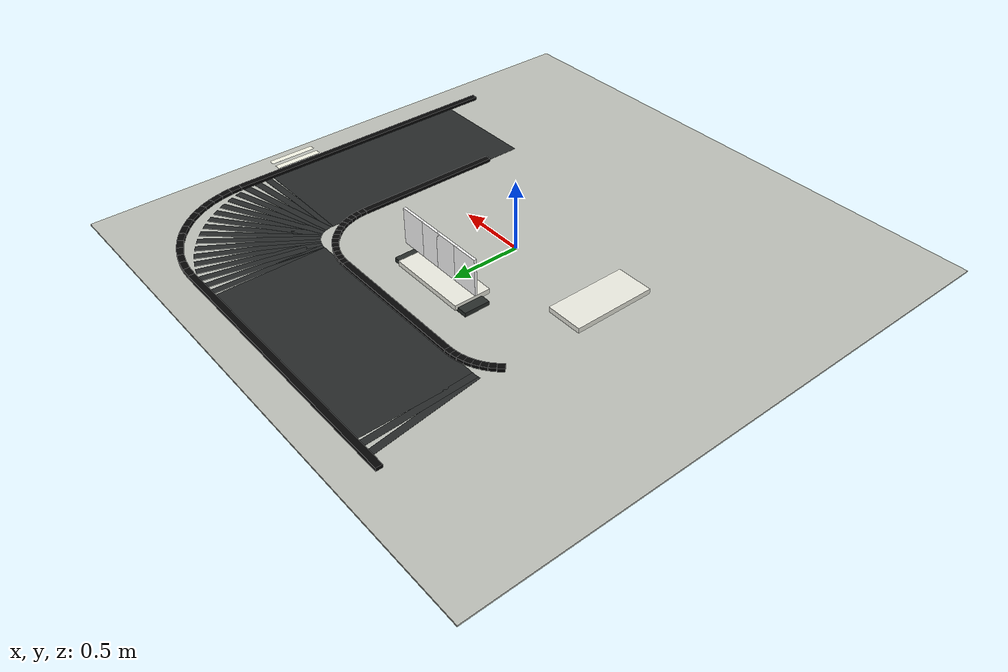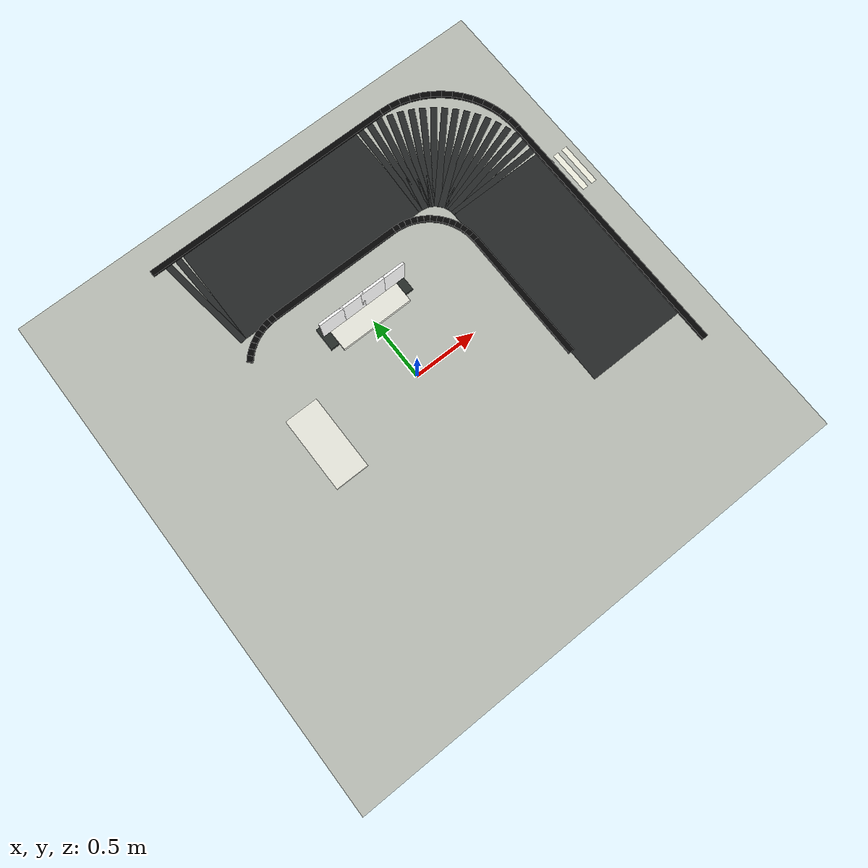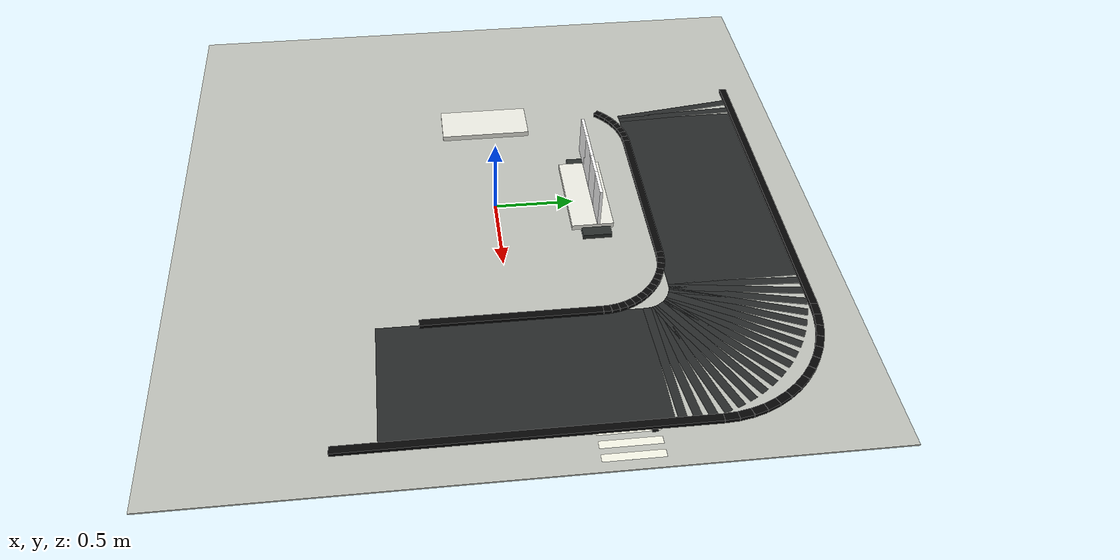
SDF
<sdf version="1.9">
 <world name="safe_city">
  <model name="ground_plane_4m">
   <static>true</static>
   <pose>0 0 0.005 0 0 0</pose>
   <link name="link">
    <collision name="collision"><geometry><box><size>4 4 0.01</size></box></geometry></collision>
    <visual name="visual">
     <geometry><box><size>4 4 0.01</size></box></geometry>
     <material><ambient>0.74 0.75 0.72 1</ambient><diffuse>0.74 0.75 0.72 1</diffuse></material>
    </visual>
   </link>
  </model>
  <model name="road_surface_37">
   <static>true</static>
   <pose>1.3500 -0.0000 0.0060 0 0 1.57080</pose>
   <link name="link">
    <visual name="visual">
     <geometry><box><size>1.5600 0.8000 0.0120</size></box></geometry>
     <material><ambient>0.15 0.16 0.16 1</ambient><diffuse>0.15 0.16 0.16 1</diffuse></material>
    </visual>
   </link>
  </model>
  <model name="road_surface_38">
   <static>true</static>
   <pose>1.3489 0.8048 0.0060 0 0 1.61443</pose>
   <link name="link">
    <visual name="visual">
     <geometry><box><size>0.0497 0.8000 0.0120</size></box></geometry>
     <material><ambient>0.15 0.16 0.16 1</ambient><diffuse>0.15 0.16 0.16 1</diffuse></material>
    </visual>
   </link>
  </model>
  <model name="road_surface_39">
   <static>true</static>
   <pose>1.3446 0.8543 0.0060 0 0 1.70170</pose>
   <link name="link">
    <visual name="visual">
     <geometry><box><size>0.0497 0.8000 0.0120</size></box></geometry>
     <material><ambient>0.15 0.16 0.16 1</ambient><diffuse>0.15 0.16 0.16 1</diffuse></material>
    </visual>
   </link>
  </model>
  <model name="road_surface_40">
   <static>true</static>
   <pose>1.3360 0.9033 0.0060 0 0 1.78896</pose>
   <link name="link">
    <visual name="visual">
     <geometry><box><size>0.0497 0.8000 0.0120</size></box></geometry>
     <material><ambient>0.15 0.16 0.16 1</ambient><diffuse>0.15 0.16 0.16 1</diffuse></material>
    </visual>
   </link>
  </model>
  <model name="road_surface_41">
   <static>true</static>
   <pose>1.3231 0.9512 0.0060 0 0 1.87623</pose>
   <link name="link">
    <visual name="visual">
     <geometry><box><size>0.0497 0.8000 0.0120</size></box></geometry>
     <material><ambient>0.15 0.16 0.16 1</ambient><diffuse>0.15 0.16 0.16 1</diffuse></material>
    </visual>
   </link>
  </model>
  <model name="road_surface_42">
   <static>true</static>
   <pose>1.3061 0.9979 0.0060 0 0 1.96350</pose>
   <link name="link">
    <visual name="visual">
     <geometry><box><size>0.0497 0.8000 0.0120</size></box></geometry>
     <material><ambient>0.15 0.16 0.16 1</ambient><diffuse>0.15 0.16 0.16 1</diffuse></material>
    </visual>
   </link>
  </model>
  <model name="road_surface_43">
   <static>true</static>
   <pose>1.2851 1.0429 0.0060 0 0 2.05076</pose>
   <link name="link">
    <visual name="visual">
     <geometry><box><size>0.0497 0.8000 0.0120</size></box></geometry>
     <material><ambient>0.15 0.16 0.16 1</ambient><diffuse>0.15 0.16 0.16 1</diffuse></material>
    </visual>
   </link>
  </model>
  <model name="road_surface_44">
   <static>true</static>
   <pose>1.2603 1.0860 0.0060 0 0 2.13803</pose>
   <link name="link">
    <visual name="visual">
     <geometry><box><size>0.0497 0.8000 0.0120</size></box></geometry>
     <material><ambient>0.15 0.16 0.16 1</ambient><diffuse>0.15 0.16 0.16 1</diffuse></material>
    </visual>
   </link>
  </model>
  <model name="road_surface_45">
   <static>true</static>
   <pose>1.2318 1.1267 0.0060 0 0 2.22529</pose>
   <link name="link">
    <visual name="visual">
     <geometry><box><size>0.0497 0.8000 0.0120</size></box></geometry>
     <material><ambient>0.15 0.16 0.16 1</ambient><diffuse>0.15 0.16 0.16 1</diffuse></material>
    </visual>
   </link>
  </model>
  <model name="road_surface_46">
   <static>true</static>
   <pose>1.1998 1.1647 0.0060 0 0 2.31256</pose>
   <link name="link">
    <visual name="visual">
     <geometry><box><size>0.0497 0.8000 0.0120</size></box></geometry>
     <material><ambient>0.15 0.16 0.16 1</ambient><diffuse>0.15 0.16 0.16 1</diffuse></material>
    </visual>
   </link>
  </model>
  <model name="road_surface_47">
   <static>true</static>
   <pose>1.1647 1.1998 0.0060 0 0 2.39983</pose>
   <link name="link">
    <visual name="visual">
     <geometry><box><size>0.0497 0.8000 0.0120</size></box></geometry>
     <material><ambient>0.15 0.16 0.16 1</ambient><diffuse>0.15 0.16 0.16 1</diffuse></material>
    </visual>
   </link>
  </model>
  <model name="road_surface_48">
   <static>true</static>
   <pose>1.1267 1.2318 0.0060 0 0 2.48709</pose>
   <link name="link">
    <visual name="visual">
     <geometry><box><size>0.0497 0.8000 0.0120</size></box></geometry>
     <material><ambient>0.15 0.16 0.16 1</ambient><diffuse>0.15 0.16 0.16 1</diffuse></material>
    </visual>
   </link>
  </model>
  <model name="road_surface_49">
   <static>true</static>
   <pose>1.0860 1.2603 0.0060 0 0 2.57436</pose>
   <link name="link">
    <visual name="visual">
     <geometry><box><size>0.0497 0.8000 0.0120</size></box></geometry>
     <material><ambient>0.15 0.16 0.16 1</ambient><diffuse>0.15 0.16 0.16 1</diffuse></material>
    </visual>
   </link>
  </model>
  <model name="road_surface_50">
   <static>true</static>
   <pose>1.0429 1.2851 0.0060 0 0 2.66163</pose>
   <link name="link">
    <visual name="visual">
     <geometry><box><size>0.0497 0.8000 0.0120</size></box></geometry>
     <material><ambient>0.15 0.16 0.16 1</ambient><diffuse>0.15 0.16 0.16 1</diffuse></material>
    </visual>
   </link>
  </model>
  <model name="road_surface_51">
   <static>true</static>
   <pose>0.9979 1.3061 0.0060 0 0 2.74889</pose>
   <link name="link">
    <visual name="visual">
     <geometry><box><size>0.0497 0.8000 0.0120</size></box></geometry>
     <material><ambient>0.15 0.16 0.16 1</ambient><diffuse>0.15 0.16 0.16 1</diffuse></material>
    </visual>
   </link>
  </model>
  <model name="road_surface_52">
   <static>true</static>
   <pose>0.9512 1.3231 0.0060 0 0 2.83616</pose>
   <link name="link">
    <visual name="visual">
     <geometry><box><size>0.0497 0.8000 0.0120</size></box></geometry>
     <material><ambient>0.15 0.16 0.16 1</ambient><diffuse>0.15 0.16 0.16 1</diffuse></material>
    </visual>
   </link>
  </model>
  <model name="road_surface_53">
   <static>true</static>
   <pose>0.9033 1.3360 0.0060 0 0 2.92343</pose>
   <link name="link">
    <visual name="visual">
     <geometry><box><size>0.0497 0.8000 0.0120</size></box></geometry>
     <material><ambient>0.15 0.16 0.16 1</ambient><diffuse>0.15 0.16 0.16 1</diffuse></material>
    </visual>
   </link>
  </model>
  <model name="road_surface_54">
   <static>true</static>
   <pose>0.8543 1.3446 0.0060 0 0 3.01069</pose>
   <link name="link">
    <visual name="visual">
     <geometry><box><size>0.0497 0.8000 0.0120</size></box></geometry>
     <material><ambient>0.15 0.16 0.16 1</ambient><diffuse>0.15 0.16 0.16 1</diffuse></material>
    </visual>
   </link>
  </model>
  <model name="road_surface_55">
   <static>true</static>
   <pose>0.8048 1.3489 0.0060 0 0 3.09796</pose>
   <link name="link">
    <visual name="visual">
     <geometry><box><size>0.0497 0.8000 0.0120</size></box></geometry>
     <material><ambient>0.15 0.16 0.16 1</ambient><diffuse>0.15 0.16 0.16 1</diffuse></material>
    </visual>
   </link>
  </model>
  <model name="road_surface_56">
   <static>true</static>
   <pose>0.0000 1.3500 0.0060 0 0 3.14159</pose>
   <link name="link">
    <visual name="visual">
     <geometry><box><size>1.5600 0.8000 0.0120</size></box></geometry>
     <material><ambient>0.15 0.16 0.16 1</ambient><diffuse>0.15 0.16 0.16 1</diffuse></material>
    </visual>
   </link>
  </model>
  <model name="road_surface_57">
   <static>true</static>
   <pose>-0.8048 1.3489 0.0060 0 0 -3.09796</pose>
   <link name="link">
    <visual name="visual">
     <geometry><box><size>0.0497 0.8000 0.0120</size></box></geometry>
     <material><ambient>0.15 0.16 0.16 1</ambient><diffuse>0.15 0.16 0.16 1</diffuse></material>
    </visual>
   </link>
  </model>
  <model name="road_surface_58">
   <static>true</static>
   <pose>-0.8543 1.3446 0.0060 0 0 -3.01069</pose>
   <link name="link">
    <visual name="visual">
     <geometry><box><size>0.0497 0.8000 0.0120</size></box></geometry>
     <material><ambient>0.15 0.16 0.16 1</ambient><diffuse>0.15 0.16 0.16 1</diffuse></material>
    </visual>
   </link>
  </model>
  <model name="outer_black_line_29">
   <static>true</static>
   <pose>1.7500 -0.0000 0.0175 0 0 1.57080</pose>
   <link name="link">
    <collision name="collision"><geometry><box><size>2.0600 0.0450 0.0350</size></box></geometry></collision>
    <visual name="visual">
     <geometry><box><size>2.0600 0.0450 0.0350</size></box></geometry>
     <material><ambient>0.02 0.02 0.02 1</ambient><diffuse>0.02 0.02 0.02 1</diffuse></material>
    </visual>
   </link>
  </model>
  <model name="outer_black_line_30">
   <static>true</static>
   <pose>1.7477 1.0703 0.0175 0 0 1.62690</pose>
   <link name="link">
    <collision name="collision"><geometry><box><size>0.0807 0.0450 0.0350</size></box></geometry></collision>
    <visual name="visual">
     <geometry><box><size>0.0807 0.0450 0.0350</size></box></geometry>
     <material><ambient>0.02 0.02 0.02 1</ambient><diffuse>0.02 0.02 0.02 1</diffuse></material>
    </visual>
   </link>
  </model>
  <model name="outer_black_line_31">
   <static>true</static>
   <pose>1.7387 1.1504 0.0175 0 0 1.73910</pose>
   <link name="link">
    <collision name="collision"><geometry><box><size>0.0807 0.0450 0.0350</size></box></geometry></collision>
    <visual name="visual">
     <geometry><box><size>0.0807 0.0450 0.0350</size></box></geometry>
     <material><ambient>0.02 0.02 0.02 1</ambient><diffuse>0.02 0.02 0.02 1</diffuse></material>
    </visual>
   </link>
  </model>
  <model name="outer_black_line_32">
   <static>true</static>
   <pose>1.7208 1.2290 0.0175 0 0 1.85130</pose>
   <link name="link">
    <collision name="collision"><geometry><box><size>0.0807 0.0450 0.0350</size></box></geometry></collision>
    <visual name="visual">
     <geometry><box><size>0.0807 0.0450 0.0350</size></box></geometry>
     <material><ambient>0.02 0.02 0.02 1</ambient><diffuse>0.02 0.02 0.02 1</diffuse></material>
    </visual>
   </link>
  </model>
  <model name="outer_black_line_33">
   <static>true</static>
   <pose>1.6941 1.3051 0.0175 0 0 1.96350</pose>
   <link name="link">
    <collision name="collision"><geometry><box><size>0.0807 0.0450 0.0350</size></box></geometry></collision>
    <visual name="visual">
     <geometry><box><size>0.0807 0.0450 0.0350</size></box></geometry>
     <material><ambient>0.02 0.02 0.02 1</ambient><diffuse>0.02 0.02 0.02 1</diffuse></material>
    </visual>
   </link>
  </model>
  <model name="outer_black_line_34">
   <static>true</static>
   <pose>1.6592 1.3777 0.0175 0 0 2.07570</pose>
   <link name="link">
    <collision name="collision"><geometry><box><size>0.0807 0.0450 0.0350</size></box></geometry></collision>
    <visual name="visual">
     <geometry><box><size>0.0807 0.0450 0.0350</size></box></geometry>
     <material><ambient>0.02 0.02 0.02 1</ambient><diffuse>0.02 0.02 0.02 1</diffuse></material>
    </visual>
   </link>
  </model>
  <model name="outer_black_line_35">
   <static>true</static>
   <pose>1.6163 1.4460 0.0175 0 0 2.18789</pose>
   <link name="link">
    <collision name="collision"><geometry><box><size>0.0807 0.0450 0.0350</size></box></geometry></collision>
    <visual name="visual">
     <geometry><box><size>0.0807 0.0450 0.0350</size></box></geometry>
     <material><ambient>0.02 0.02 0.02 1</ambient><diffuse>0.02 0.02 0.02 1</diffuse></material>
    </visual>
   </link>
  </model>
  <model name="outer_black_line_36">
   <static>true</static>
   <pose>1.5660 1.5090 0.0175 0 0 2.30009</pose>
   <link name="link">
    <collision name="collision"><geometry><box><size>0.0807 0.0450 0.0350</size></box></geometry></collision>
    <visual name="visual">
     <geometry><box><size>0.0807 0.0450 0.0350</size></box></geometry>
     <material><ambient>0.02 0.02 0.02 1</ambient><diffuse>0.02 0.02 0.02 1</diffuse></material>
    </visual>
   </link>
  </model>
  <model name="outer_black_line_37">
   <static>true</static>
   <pose>1.5090 1.5660 0.0175 0 0 2.41229</pose>
   <link name="link">
    <collision name="collision"><geometry><box><size>0.0807 0.0450 0.0350</size></box></geometry></collision>
    <visual name="visual">
     <geometry><box><size>0.0807 0.0450 0.0350</size></box></geometry>
     <material><ambient>0.02 0.02 0.02 1</ambient><diffuse>0.02 0.02 0.02 1</diffuse></material>
    </visual>
   </link>
  </model>
  <model name="outer_black_line_38">
   <static>true</static>
   <pose>1.4460 1.6163 0.0175 0 0 2.52449</pose>
   <link name="link">
    <collision name="collision"><geometry><box><size>0.0807 0.0450 0.0350</size></box></geometry></collision>
    <visual name="visual">
     <geometry><box><size>0.0807 0.0450 0.0350</size></box></geometry>
     <material><ambient>0.02 0.02 0.02 1</ambient><diffuse>0.02 0.02 0.02 1</diffuse></material>
    </visual>
   </link>
  </model>
  <model name="outer_black_line_39">
   <static>true</static>
   <pose>1.3777 1.6592 0.0175 0 0 2.63669</pose>
   <link name="link">
    <collision name="collision"><geometry><box><size>0.0807 0.0450 0.0350</size></box></geometry></collision>
    <visual name="visual">
     <geometry><box><size>0.0807 0.0450 0.0350</size></box></geometry>
     <material><ambient>0.02 0.02 0.02 1</ambient><diffuse>0.02 0.02 0.02 1</diffuse></material>
    </visual>
   </link>
  </model>
  <model name="outer_black_line_40">
   <static>true</static>
   <pose>1.3051 1.6941 0.0175 0 0 2.74889</pose>
   <link name="link">
    <collision name="collision"><geometry><box><size>0.0807 0.0450 0.0350</size></box></geometry></collision>
    <visual name="visual">
     <geometry><box><size>0.0807 0.0450 0.0350</size></box></geometry>
     <material><ambient>0.02 0.02 0.02 1</ambient><diffuse>0.02 0.02 0.02 1</diffuse></material>
    </visual>
   </link>
  </model>
  <model name="outer_black_line_41">
   <static>true</static>
   <pose>1.2290 1.7208 0.0175 0 0 2.86109</pose>
   <link name="link">
    <collision name="collision"><geometry><box><size>0.0807 0.0450 0.0350</size></box></geometry></collision>
    <visual name="visual">
     <geometry><box><size>0.0807 0.0450 0.0350</size></box></geometry>
     <material><ambient>0.02 0.02 0.02 1</ambient><diffuse>0.02 0.02 0.02 1</diffuse></material>
    </visual>
   </link>
  </model>
  <model name="outer_black_line_42">
   <static>true</static>
   <pose>1.1504 1.7387 0.0175 0 0 2.97329</pose>
   <link name="link">
    <collision name="collision"><geometry><box><size>0.0807 0.0450 0.0350</size></box></geometry></collision>
    <visual name="visual">
     <geometry><box><size>0.0807 0.0450 0.0350</size></box></geometry>
     <material><ambient>0.02 0.02 0.02 1</ambient><diffuse>0.02 0.02 0.02 1</diffuse></material>
    </visual>
   </link>
  </model>
  <model name="outer_black_line_43">
   <static>true</static>
   <pose>1.0703 1.7477 0.0175 0 0 3.08549</pose>
   <link name="link">
    <collision name="collision"><geometry><box><size>0.0807 0.0450 0.0350</size></box></geometry></collision>
    <visual name="visual">
     <geometry><box><size>0.0807 0.0450 0.0350</size></box></geometry>
     <material><ambient>0.02 0.02 0.02 1</ambient><diffuse>0.02 0.02 0.02 1</diffuse></material>
    </visual>
   </link>
  </model>
  <model name="outer_black_line_44">
   <static>true</static>
   <pose>0.0000 1.7500 0.0175 0 0 3.14159</pose>
   <link name="link">
    <collision name="collision"><geometry><box><size>2.0600 0.0450 0.0350</size></box></geometry></collision>
    <visual name="visual">
     <geometry><box><size>2.0600 0.0450 0.0350</size></box></geometry>
     <material><ambient>0.02 0.02 0.02 1</ambient><diffuse>0.02 0.02 0.02 1</diffuse></material>
    </visual>
   </link>
  </model>
  <model name="inner_black_line_29">
   <static>true</static>
   <pose>0.9500 -0.0000 0.0175 0 0 1.57080</pose>
   <link name="link">
    <collision name="collision"><geometry><box><size>1.0600 0.0450 0.0350</size></box></geometry></collision>
    <visual name="visual">
     <geometry><box><size>1.0600 0.0450 0.0350</size></box></geometry>
     <material><ambient>0.02 0.02 0.02 1</ambient><diffuse>0.02 0.02 0.02 1</diffuse></material>
    </visual>
   </link>
  </model>
  <model name="inner_black_line_30">
   <static>true</static>
   <pose>0.9487 0.5535 0.0175 0 0 1.62690</pose>
   <link name="link">
    <collision name="collision"><geometry><box><size>0.0471 0.0450 0.0350</size></box></geometry></collision>
    <visual name="visual">
     <geometry><box><size>0.0471 0.0450 0.0350</size></box></geometry>
     <material><ambient>0.02 0.02 0.02 1</ambient><diffuse>0.02 0.02 0.02 1</diffuse></material>
    </visual>
   </link>
  </model>
  <model name="inner_black_line_31">
   <static>true</static>
   <pose>0.9434 0.6002 0.0175 0 0 1.73910</pose>
   <link name="link">
    <collision name="collision"><geometry><box><size>0.0471 0.0450 0.0350</size></box></geometry></collision>
    <visual name="visual">
     <geometry><box><size>0.0471 0.0450 0.0350</size></box></geometry>
     <material><ambient>0.02 0.02 0.02 1</ambient><diffuse>0.02 0.02 0.02 1</diffuse></material>
    </visual>
   </link>
  </model>
  <model name="inner_black_line_32">
   <static>true</static>
   <pose>0.9330 0.6461 0.0175 0 0 1.85130</pose>
   <link name="link">
    <collision name="collision"><geometry><box><size>0.0471 0.0450 0.0350</size></box></geometry></collision>
    <visual name="visual">
     <geometry><box><size>0.0471 0.0450 0.0350</size></box></geometry>
     <material><ambient>0.02 0.02 0.02 1</ambient><diffuse>0.02 0.02 0.02 1</diffuse></material>
    </visual>
   </link>
  </model>
  <model name="inner_black_line_33">
   <static>true</static>
   <pose>0.9174 0.6905 0.0175 0 0 1.96350</pose>
   <link name="link">
    <collision name="collision"><geometry><box><size>0.0471 0.0450 0.0350</size></box></geometry></collision>
    <visual name="visual">
     <geometry><box><size>0.0471 0.0450 0.0350</size></box></geometry>
     <material><ambient>0.02 0.02 0.02 1</ambient><diffuse>0.02 0.02 0.02 1</diffuse></material>
    </visual>
   </link>
  </model>
  <model name="inner_black_line_34">
   <static>true</static>
   <pose>0.8970 0.7328 0.0175 0 0 2.07570</pose>
   <link name="link">
    <collision name="collision"><geometry><box><size>0.0471 0.0450 0.0350</size></box></geometry></collision>
    <visual name="visual">
     <geometry><box><size>0.0471 0.0450 0.0350</size></box></geometry>
     <material><ambient>0.02 0.02 0.02 1</ambient><diffuse>0.02 0.02 0.02 1</diffuse></material>
    </visual>
   </link>
  </model>
  <model name="inner_black_line_35">
   <static>true</static>
   <pose>0.8720 0.7727 0.0175 0 0 2.18789</pose>
   <link name="link">
    <collision name="collision"><geometry><box><size>0.0471 0.0450 0.0350</size></box></geometry></collision>
    <visual name="visual">
     <geometry><box><size>0.0471 0.0450 0.0350</size></box></geometry>
     <material><ambient>0.02 0.02 0.02 1</ambient><diffuse>0.02 0.02 0.02 1</diffuse></material>
    </visual>
   </link>
  </model>
  <model name="inner_black_line_36">
   <static>true</static>
   <pose>0.8427 0.8094 0.0175 0 0 2.30009</pose>
   <link name="link">
    <collision name="collision"><geometry><box><size>0.0471 0.0450 0.0350</size></box></geometry></collision>
    <visual name="visual">
     <geometry><box><size>0.0471 0.0450 0.0350</size></box></geometry>
     <material><ambient>0.02 0.02 0.02 1</ambient><diffuse>0.02 0.02 0.02 1</diffuse></material>
    </visual>
   </link>
  </model>
  <model name="inner_black_line_37">
   <static>true</static>
   <pose>0.8094 0.8427 0.0175 0 0 2.41229</pose>
   <link name="link">
    <collision name="collision"><geometry><box><size>0.0471 0.0450 0.0350</size></box></geometry></collision>
    <visual name="visual">
     <geometry><box><size>0.0471 0.0450 0.0350</size></box></geometry>
     <material><ambient>0.02 0.02 0.02 1</ambient><diffuse>0.02 0.02 0.02 1</diffuse></material>
    </visual>
   </link>
  </model>
  <model name="inner_black_line_38">
   <static>true</static>
   <pose>0.7727 0.8720 0.0175 0 0 2.52449</pose>
   <link name="link">
    <collision name="collision"><geometry><box><size>0.0471 0.0450 0.0350</size></box></geometry></collision>
    <visual name="visual">
     <geometry><box><size>0.0471 0.0450 0.0350</size></box></geometry>
     <material><ambient>0.02 0.02 0.02 1</ambient><diffuse>0.02 0.02 0.02 1</diffuse></material>
    </visual>
   </link>
  </model>
  <model name="inner_black_line_39">
   <static>true</static>
   <pose>0.7328 0.8970 0.0175 0 0 2.63669</pose>
   <link name="link">
    <collision name="collision"><geometry><box><size>0.0471 0.0450 0.0350</size></box></geometry></collision>
    <visual name="visual">
     <geometry><box><size>0.0471 0.0450 0.0350</size></box></geometry>
     <material><ambient>0.02 0.02 0.02 1</ambient><diffuse>0.02 0.02 0.02 1</diffuse></material>
    </visual>
   </link>
  </model>
  <model name="inner_black_line_40">
   <static>true</static>
   <pose>0.6905 0.9174 0.0175 0 0 2.74889</pose>
   <link name="link">
    <collision name="collision"><geometry><box><size>0.0471 0.0450 0.0350</size></box></geometry></collision>
    <visual name="visual">
     <geometry><box><size>0.0471 0.0450 0.0350</size></box></geometry>
     <material><ambient>0.02 0.02 0.02 1</ambient><diffuse>0.02 0.02 0.02 1</diffuse></material>
    </visual>
   </link>
  </model>
  <model name="inner_black_line_41">
   <static>true</static>
   <pose>0.6461 0.9330 0.0175 0 0 2.86109</pose>
   <link name="link">
    <collision name="collision"><geometry><box><size>0.0471 0.0450 0.0350</size></box></geometry></collision>
    <visual name="visual">
     <geometry><box><size>0.0471 0.0450 0.0350</size></box></geometry>
     <material><ambient>0.02 0.02 0.02 1</ambient><diffuse>0.02 0.02 0.02 1</diffuse></material>
    </visual>
   </link>
  </model>
  <model name="inner_black_line_42">
   <static>true</static>
   <pose>0.6002 0.9434 0.0175 0 0 2.97329</pose>
   <link name="link">
    <collision name="collision"><geometry><box><size>0.0471 0.0450 0.0350</size></box></geometry></collision>
    <visual name="visual">
     <geometry><box><size>0.0471 0.0450 0.0350</size></box></geometry>
     <material><ambient>0.02 0.02 0.02 1</ambient><diffuse>0.02 0.02 0.02 1</diffuse></material>
    </visual>
   </link>
  </model>
  <model name="inner_black_line_43">
   <static>true</static>
   <pose>0.5535 0.9487 0.0175 0 0 3.08549</pose>
   <link name="link">
    <collision name="collision"><geometry><box><size>0.0471 0.0450 0.0350</size></box></geometry></collision>
    <visual name="visual">
     <geometry><box><size>0.0471 0.0450 0.0350</size></box></geometry>
     <material><ambient>0.02 0.02 0.02 1</ambient><diffuse>0.02 0.02 0.02 1</diffuse></material>
    </visual>
   </link>
  </model>
  <model name="inner_black_line_44">
   <static>true</static>
   <pose>0.0000 0.9500 0.0175 0 0 3.14159</pose>
   <link name="link">
    <collision name="collision"><geometry><box><size>1.0600 0.0450 0.0350</size></box></geometry></collision>
    <visual name="visual">
     <geometry><box><size>1.0600 0.0450 0.0350</size></box></geometry>
     <material><ambient>0.02 0.02 0.02 1</ambient><diffuse>0.02 0.02 0.02 1</diffuse></material>
    </visual>
   </link>
  </model>
  <model name="inner_black_line_45">
   <static>true</static>
   <pose>-0.5535 0.9487 0.0175 0 0 -3.08549</pose>
   <link name="link">
    <collision name="collision"><geometry><box><size>0.0471 0.0450 0.0350</size></box></geometry></collision>
    <visual name="visual">
     <geometry><box><size>0.0471 0.0450 0.0350</size></box></geometry>
     <material><ambient>0.02 0.02 0.02 1</ambient><diffuse>0.02 0.02 0.02 1</diffuse></material>
    </visual>
   </link>
  </model>
  <model name="inner_black_line_46">
   <static>true</static>
   <pose>-0.6002 0.9434 0.0175 0 0 -2.97329</pose>
   <link name="link">
    <collision name="collision"><geometry><box><size>0.0471 0.0450 0.0350</size></box></geometry></collision>
    <visual name="visual">
     <geometry><box><size>0.0471 0.0450 0.0350</size></box></geometry>
     <material><ambient>0.02 0.02 0.02 1</ambient><diffuse>0.02 0.02 0.02 1</diffuse></material>
    </visual>
   </link>
  </model>
  <model name="inner_black_line_47">
   <static>true</static>
   <pose>-0.6461 0.9330 0.0175 0 0 -2.86109</pose>
   <link name="link">
    <collision name="collision"><geometry><box><size>0.0471 0.0450 0.0350</size></box></geometry></collision>
    <visual name="visual">
     <geometry><box><size>0.0471 0.0450 0.0350</size></box></geometry>
     <material><ambient>0.02 0.02 0.02 1</ambient><diffuse>0.02 0.02 0.02 1</diffuse></material>
    </visual>
   </link>
  </model>
  <model name="inner_black_line_48">
   <static>true</static>
   <pose>-0.6905 0.9174 0.0175 0 0 -2.74889</pose>
   <link name="link">
    <collision name="collision"><geometry><box><size>0.0471 0.0450 0.0350</size></box></geometry></collision>
    <visual name="visual">
     <geometry><box><size>0.0471 0.0450 0.0350</size></box></geometry>
     <material><ambient>0.02 0.02 0.02 1</ambient><diffuse>0.02 0.02 0.02 1</diffuse></material>
    </visual>
   </link>
  </model>
  <model name="inner_black_line_49">
   <static>true</static>
   <pose>-0.7328 0.8970 0.0175 0 0 -2.63669</pose>
   <link name="link">
    <collision name="collision"><geometry><box><size>0.0471 0.0450 0.0350</size></box></geometry></collision>
    <visual name="visual">
     <geometry><box><size>0.0471 0.0450 0.0350</size></box></geometry>
     <material><ambient>0.02 0.02 0.02 1</ambient><diffuse>0.02 0.02 0.02 1</diffuse></material>
    </visual>
   </link>
  </model>
  <model name="inner_black_line_50">
   <static>true</static>
   <pose>-0.7727 0.8720 0.0175 0 0 -2.52449</pose>
   <link name="link">
    <collision name="collision"><geometry><box><size>0.0471 0.0450 0.0350</size></box></geometry></collision>
    <visual name="visual">
     <geometry><box><size>0.0471 0.0450 0.0350</size></box></geometry>
     <material><ambient>0.02 0.02 0.02 1</ambient><diffuse>0.02 0.02 0.02 1</diffuse></material>
    </visual>
   </link>
  </model>
  <model name="inner_black_line_51">
   <static>true</static>
   <pose>-0.8094 0.8427 0.0175 0 0 -2.41229</pose>
   <link name="link">
    <collision name="collision"><geometry><box><size>0.0471 0.0450 0.0350</size></box></geometry></collision>
    <visual name="visual">
     <geometry><box><size>0.0471 0.0450 0.0350</size></box></geometry>
     <material><ambient>0.02 0.02 0.02 1</ambient><diffuse>0.02 0.02 0.02 1</diffuse></material>
    </visual>
   </link>
  </model>
  <model name="inner_black_line_52">
   <static>true</static>
   <pose>-0.8427 0.8094 0.0175 0 0 -2.30009</pose>
   <link name="link">
    <collision name="collision"><geometry><box><size>0.0471 0.0450 0.0350</size></box></geometry></collision>
    <visual name="visual">
     <geometry><box><size>0.0471 0.0450 0.0350</size></box></geometry>
     <material><ambient>0.02 0.02 0.02 1</ambient><diffuse>0.02 0.02 0.02 1</diffuse></material>
    </visual>
   </link>
  </model>
  <model name="right_sidewalk_upper_line">
   <static>true</static>
   <pose>1.55 0.66 0.0116 0 0 0</pose>
   <link name="link">
    <visual name="visual">
     <geometry><plane><size>0.48 0.035</size></plane></geometry>
     <material><ambient>0.02 0.02 0.02 1</ambient><diffuse>0.02 0.02 0.02 1</diffuse></material>
    </visual>
   </link>
  </model>
  <model name="right_crosswalk_upper_0">
   <static>true</static>
   <pose>1.520 0.520 0.0115 0 0 0</pose>
   <link name="link">
    <visual name="visual">
     <geometry><plane><size>0.045 0.34</size></plane></geometry>
     <material><ambient>0.96 0.96 0.90 1</ambient><diffuse>0.96 0.96 0.90 1</diffuse></material>
    </visual>
   </link>
  </model>
  <model name="right_crosswalk_upper_1">
   <static>true</static>
   <pose>1.600 0.520 0.0115 0 0 0</pose>
   <link name="link">
    <visual name="visual">
     <geometry><plane><size>0.045 0.34</size></plane></geometry>
     <material><ambient>0.96 0.96 0.90 1</ambient><diffuse>0.96 0.96 0.90 1</diffuse></material>
    </visual>
   </link>
  </model>
  <model name="right_crosswalk_upper_2">
   <static>true</static>
   <pose>1.680 0.520 0.0115 0 0 0</pose>
   <link name="link">
    <visual name="visual">
     <geometry><plane><size>0.045 0.34</size></plane></geometry>
     <material><ambient>0.96 0.96 0.90 1</ambient><diffuse>0.96 0.96 0.90 1</diffuse></material>
    </visual>
   </link>
  </model>
  <model name="right_crosswalk_upper_3">
   <static>true</static>
   <pose>1.760 0.520 0.0115 0 0 0</pose>
   <link name="link">
    <visual name="visual">
     <geometry><plane><size>0.045 0.34</size></plane></geometry>
     <material><ambient>0.96 0.96 0.90 1</ambient><diffuse>0.96 0.96 0.90 1</diffuse></material>
    </visual>
   </link>
  </model>
  <model name="right_crosswalk_upper_4">
   <static>true</static>
   <pose>1.840 0.520 0.0115 0 0 0</pose>
   <link name="link">
    <visual name="visual">
     <geometry><plane><size>0.045 0.34</size></plane></geometry>
     <material><ambient>0.96 0.96 0.90 1</ambient><diffuse>0.96 0.96 0.90 1</diffuse></material>
    </visual>
   </link>
  </model>
  <model name="right_crosswalk_upper_5">
   <static>true</static>
   <pose>1.920 0.520 0.0115 0 0 0</pose>
   <link name="link">
    <visual name="visual">
     <geometry><plane><size>0.045 0.34</size></plane></geometry>
     <material><ambient>0.96 0.96 0.90 1</ambient><diffuse>0.96 0.96 0.90 1</diffuse></material>
    </visual>
   </link>
  </model>
  <model name="trash_label_plate">
   <static>true</static>
   <pose>0 0.58 0.05 0 0 0</pose>
   <link name="link">
    <visual name="visual">
     <geometry><box><size>0.58 0.26 0.035</size></box></geometry>
     <material><ambient>0.92 0.92 0.88 1</ambient><diffuse>0.92 0.92 0.88 1</diffuse></material>
    </visual>
   </link>
  </model>
  <model name="trash_bin_models">
   <static>true</static>
   <pose>0 0.60 0.30 0 0 0</pose>
   <link name="link">
    <visual name="trash_real_photo_base">
     <pose>0 0 -0.270 0 0 0</pose>
     <geometry><box><size>0.72 0.18 0.030</size></box></geometry>
     <material><ambient>0.16 0.18 0.17 1</ambient><diffuse>0.16 0.18 0.17 1</diffuse></material>
    </visual>
    <visual name="kitchen_photo_billboard">
     <pose>-0.255 0 -0.04 0 0 0</pose>
     <geometry><box><size>0.195 0.018 0.260</size></box></geometry>
     <material>
      <ambient>1 1 1 1</ambient>
      <diffuse>1 1 1 1</diffuse>
      <pbr><metal><albedo_map>../materials/textures/kitchen_bin.jpg</albedo_map></metal></pbr>
     </material>
    </visual>
    <visual name="recyclable_photo_billboard">
     <pose>-0.085 0 -0.04 0 0 0</pose>
     <geometry><box><size>0.195 0.018 0.260</size></box></geometry>
     <material>
      <ambient>1 1 1 1</ambient>
      <diffuse>1 1 1 1</diffuse>
      <pbr><metal><albedo_map>../materials/textures/recyclable_bin.jpg</albedo_map></metal></pbr>
     </material>
    </visual>
    <visual name="hazardous_photo_billboard">
     <pose>0.085 0 -0.04 0 0 0</pose>
     <geometry><box><size>0.195 0.018 0.260</size></box></geometry>
     <material>
      <ambient>1 1 1 1</ambient>
      <diffuse>1 1 1 1</diffuse>
      <pbr><metal><albedo_map>../materials/textures/hazardous_bin.jpg</albedo_map></metal></pbr>
     </material>
    </visual>
    <visual name="other_photo_billboard">
     <pose>0.255 0 -0.04 0 0 0</pose>
     <geometry><box><size>0.195 0.018 0.260</size></box></geometry>
     <material>
      <ambient>1 1 1 1</ambient>
      <diffuse>1 1 1 1</diffuse>
      <pbr><metal><albedo_map>../materials/textures/other_bin.jpg</albedo_map></metal></pbr>
     </material>
    </visual>
   </link>
  </model>
  <model name="people_label_plate">
   <static>true</static>
   <pose>-0.78 0 0.05 0 0 1.5708</pose>
   <link name="link">
    <visual name="visual">
     <geometry><box><size>0.58 0.26 0.035</size></box></geometry>
     <material><ambient>0.92 0.92 0.88 1</ambient><diffuse>0.92 0.92 0.88 1</diffuse></material>
    </visual>
   </link>
  </model>
 </world>
</sdf>
